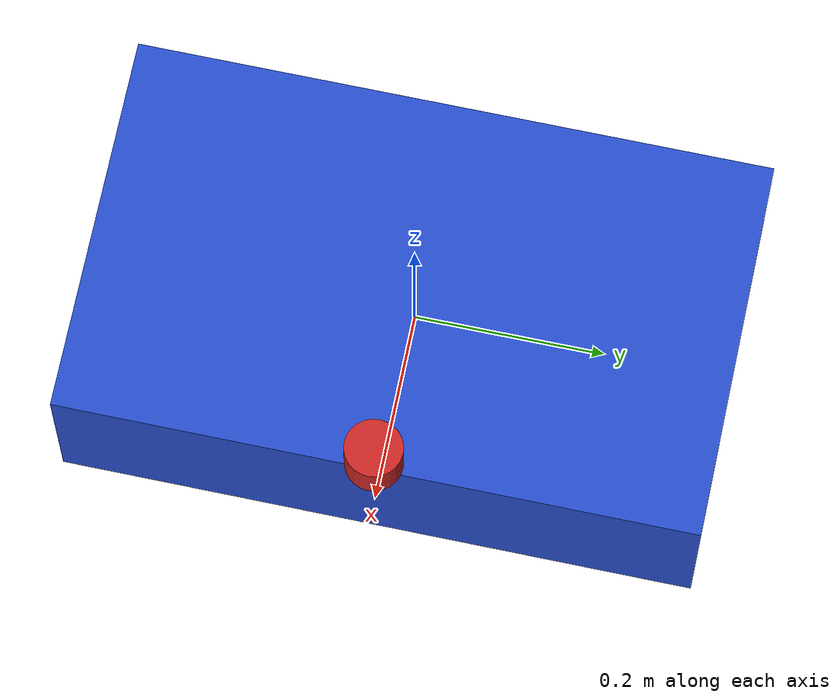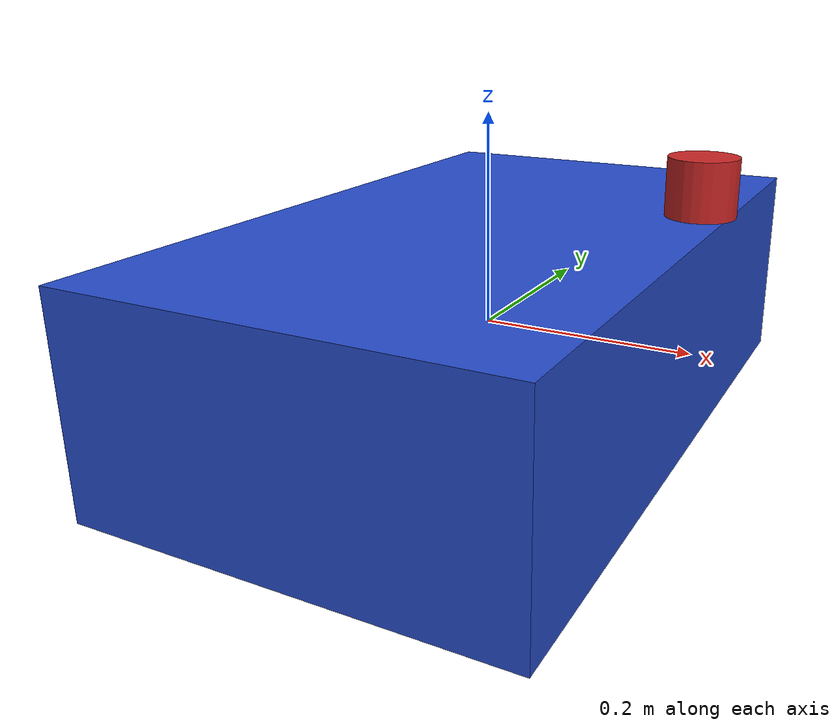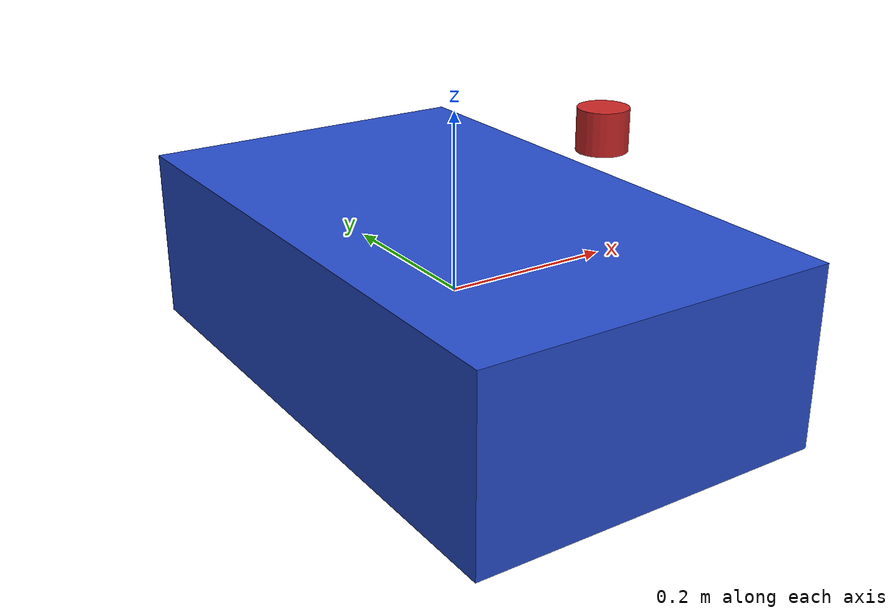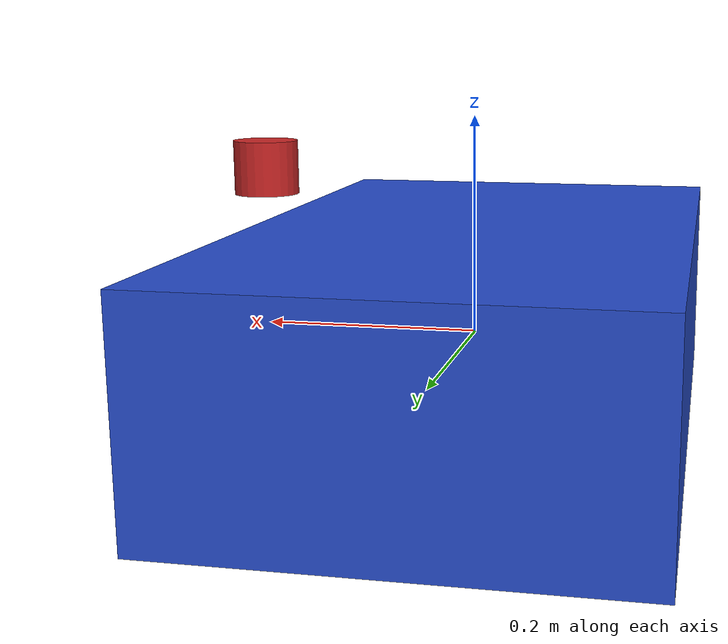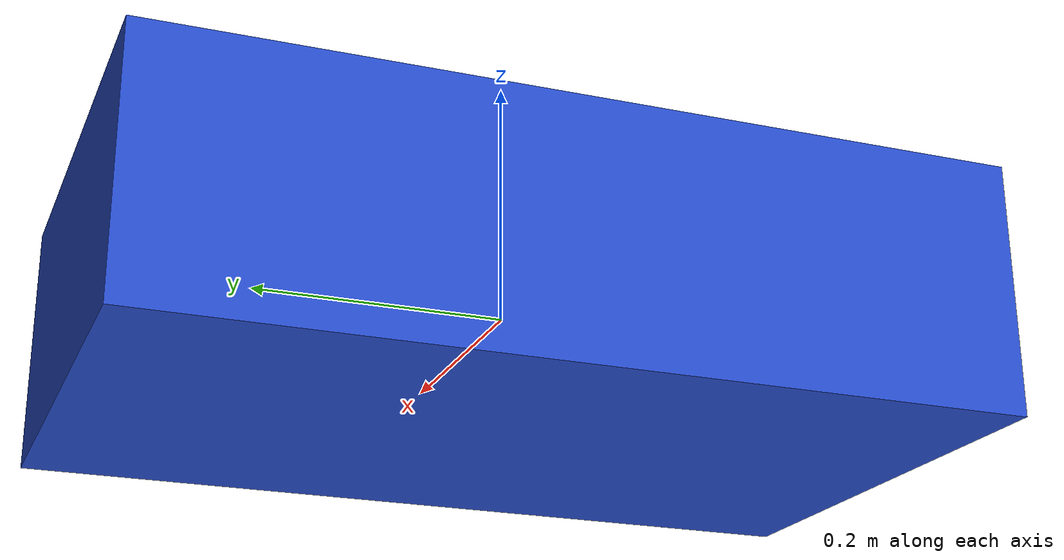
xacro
<?xml version="1.0"?>
<robot name="race_car" xmlns:xacro="http://www.ros.org/wiki/xacro">
  <link name="base_link">
    <visual>
      <geometry>
        <box size=" 0.4 0.67 0.2"/> <!-- Car dimensions -->
      </geometry>
      <material name="blue"/>
    </visual>
    <collision>
      <geometry>
        <box size="0.4 0.67 0.2"/>
      </geometry>
    </collision>
  </link>

  <link name="laser">
    <visual>
      <geometry>
        <cylinder length="0.05" radius="0.03"/> <!-- Lidar shape -->
      </geometry>
      <material name="red"/>
    </visual>
  </link>

  <joint name="laser_joint" type="fixed">
    <parent link="base_link"/>
    <child link="laser"/>
    <origin xyz="0.2 0.0 0.15" rpy="0 0 0"/> <!-- Adjust position and orientation based on your setup -->
  </joint>
</robot>
